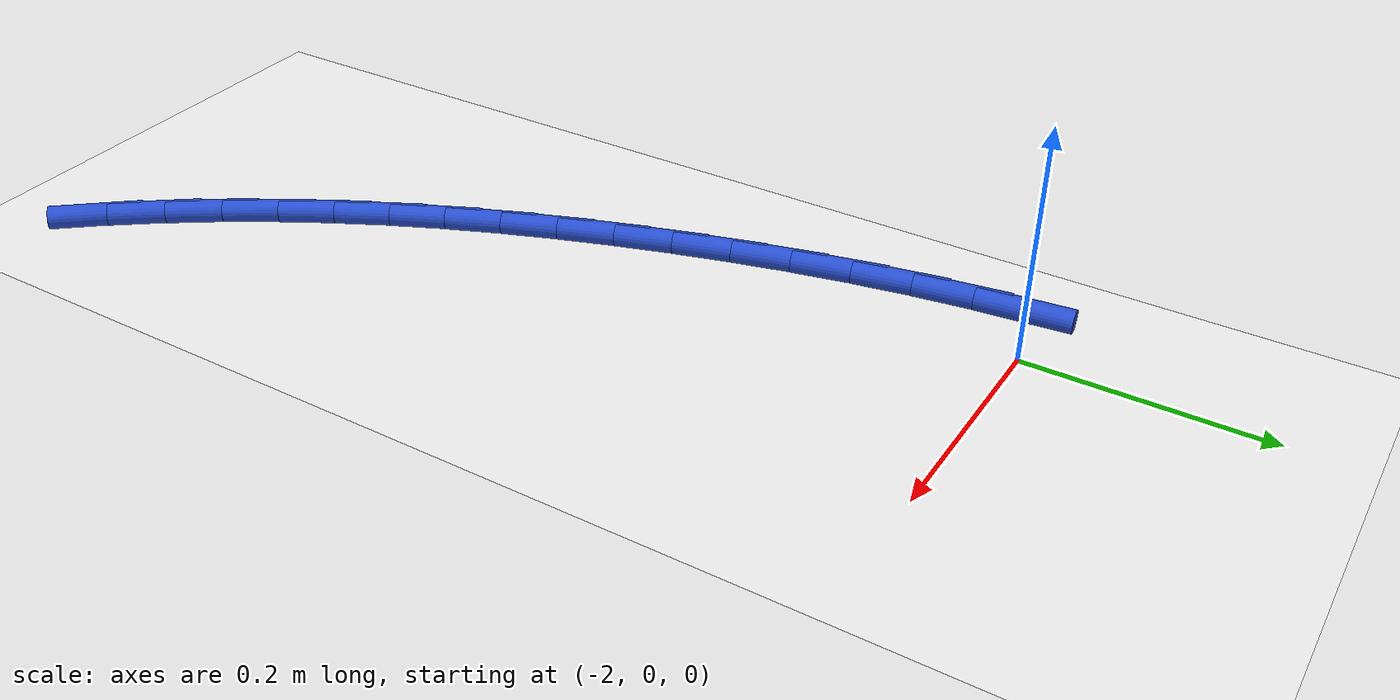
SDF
<sdf version="1.6">
 <world name="default">
  <model name="ground_plane">
   <static>1</static>
   <link name="link">
    <collision name="collision">
     <geometry><plane><normal>0 0 1</normal><size>100 100</size></plane></geometry>
     <surface><friction><ode><mu>100</mu><mu2>50</mu2></ode></friction></surface>
    </collision>
    <visual name="visual">
     <cast_shadows>0</cast_shadows>
     <geometry><plane><normal>0 0 1</normal><size>100 100</size></plane></geometry>
     <material>
      <script><uri>file://media/materials/scripts/gazebo.material</uri><name>Gazebo/WhiteGlow</name></script>
     </material>
    </visual>
   </link>
  </model>
  <model name="line">
   <link name="link_65">
    <pose>-2.0551606696657134 -0.016777494721904634 0.01 0 1.57 -1.457735721249792</pose>
    <collision name="collision">
     <geometry><cylinder><radius>0.01</radius><length>0.08</length></cylinder></geometry>
    </collision>
    <visual name="visual">
     <material>
      <script><name>Gazebo/Blue</name><uri>file://media/materials/scripts/gazebo.material</uri></script>
     </material>
     <geometry><cylinder><radius>0.01</radius><length>0.08</length></cylinder></geometry>
    </visual>
   </link>
   <link name="link_66">
    <pose>-2.0494040097768056 -0.06747694374677116 0.01 0 1.57 -1.416148608408671</pose>
    <collision name="collision">
     <geometry><cylinder><radius>0.01</radius><length>0.08</length></cylinder></geometry>
    </collision>
    <visual name="visual">
     <material>
      <script><name>Gazebo/Blue</name><uri>file://media/materials/scripts/gazebo.material</uri></script>
     </material>
     <geometry><cylinder><radius>0.01</radius><length>0.08</length></cylinder></geometry>
    </visual>
   </link>
   <link name="link_67">
    <pose>-2.041511307153092 -0.11810608816605211 0.01 0 1.57 -1.3776718553835887</pose>
    <collision name="collision">
     <geometry><cylinder><radius>0.01</radius><length>0.08</length></cylinder></geometry>
    </collision>
    <visual name="visual">
     <material>
      <script><name>Gazebo/Blue</name><uri>file://media/materials/scripts/gazebo.material</uri></script>
     </material>
     <geometry><cylinder><radius>0.01</radius><length>0.08</length></cylinder></geometry>
    </visual>
   </link>
   <link name="link_68">
    <pose>-2.031654088785168 -0.16851070064659435 0.01 0 1.57 -1.3419908279740378</pose>
    <collision name="collision">
     <geometry><cylinder><radius>0.01</radius><length>0.08</length></cylinder></geometry>
    </collision>
    <visual name="visual">
     <material>
      <script><name>Gazebo/Blue</name><uri>file://media/materials/scripts/gazebo.material</uri></script>
     </material>
     <geometry><cylinder><radius>0.01</radius><length>0.08</length></cylinder></geometry>
    </visual>
   </link>
   <link name="link_69">
    <pose>-2.020003881663624 -0.2185365538552469 0.01 0 1.57 -1.308806638575488</pose>
    <collision name="collision">
     <geometry><cylinder><radius>0.01</radius><length>0.08</length></cylinder></geometry>
    </collision>
    <visual name="visual">
     <material>
      <script><name>Gazebo/Blue</name><uri>file://media/materials/scripts/gazebo.material</uri></script>
     </material>
     <geometry><cylinder><radius>0.01</radius><length>0.08</length></cylinder></geometry>
    </visual>
   </link>
   <link name="link_70">
    <pose>-2.0067322127790517 -0.2680294204588588 0.01 0 1.57 -1.2778381307066418</pose>
    <collision name="collision">
     <geometry><cylinder><radius>0.01</radius><length>0.08</length></cylinder></geometry>
    </collision>
    <visual name="visual">
     <material>
      <script><name>Gazebo/Blue</name><uri>file://media/materials/scripts/gazebo.material</uri></script>
     </material>
     <geometry><cylinder><radius>0.01</radius><length>0.08</length></cylinder></geometry>
    </visual>
   </link>
   <link name="link_71">
    <pose>-1.992010609122044 -0.3168350731242769 0.01 0 1.57 -1.2487879937569695</pose>
    <collision name="collision">
     <geometry><cylinder><radius>0.01</radius><length>0.08</length></cylinder></geometry>
    </collision>
    <visual name="visual">
     <material>
      <script><name>Gazebo/Blue</name><uri>file://media/materials/scripts/gazebo.material</uri></script>
     </material>
     <geometry><cylinder><radius>0.01</radius><length>0.08</length></cylinder></geometry>
    </visual>
   </link>
   <link name="link_72">
    <pose>-1.9760083666661656 -0.3648005820035588 0.01 0 1.57 -1.2197520336599397</pose>
    <collision name="collision">
     <geometry><cylinder><radius>0.01</radius><length>0.08</length></cylinder></geometry>
    </collision>
    <visual name="visual">
     <material>
      <script><name>Gazebo/Blue</name><uri>file://media/materials/scripts/gazebo.material</uri></script>
     </material>
     <geometry><cylinder><radius>0.01</radius><length>0.08</length></cylinder></geometry>
    </visual>
   </link>
   <link name="link_73">
    <pose>-1.9587825834409107 -0.4118382678367854 0.01 0 1.57 -1.1882720904047646</pose>
    <collision name="collision">
     <geometry><cylinder><radius>0.01</radius><length>0.08</length></cylinder></geometry>
    </collision>
    <visual name="visual">
     <material>
      <script><name>Gazebo/Blue</name><uri>file://media/materials/scripts/gazebo.material</uri></script>
     </material>
     <geometry><cylinder><radius>0.01</radius><length>0.08</length></cylinder></geometry>
    </visual>
   </link>
   <link name="link_74">
    <pose>-1.9402278800194879 -0.4579549428420281 0.01 0 1.57 -1.1542643102217944</pose>
    <collision name="collision">
     <geometry><cylinder><radius>0.01</radius><length>0.08</length></cylinder></geometry>
    </collision>
    <visual name="visual">
     <material>
      <script><name>Gazebo/Blue</name><uri>file://media/materials/scripts/gazebo.material</uri></script>
     </material>
     <geometry><cylinder><radius>0.01</radius><length>0.08</length></cylinder></geometry>
    </visual>
   </link>
   <link name="link_75">
    <pose>-1.920226155856027 -0.5031648174165962 0.01 0 1.57 -1.117888581125724</pose>
    <collision name="collision">
     <geometry><cylinder><radius>0.01</radius><length>0.08</length></cylinder></geometry>
    </collision>
    <visual name="visual">
     <material>
      <script><name>Gazebo/Blue</name><uri>file://media/materials/scripts/gazebo.material</uri></script>
     </material>
     <geometry><cylinder><radius>0.01</radius><length>0.08</length></cylinder></geometry>
    </visual>
   </link>
   <link name="link_76">
    <pose>-1.8986593104046592 -0.5474821019577975 0.01 0 1.57 -1.079358827847979</pose>
    <collision name="collision">
     <geometry><cylinder><radius>0.01</radius><length>0.08</length></cylinder></geometry>
    </collision>
    <visual name="visual">
     <material>
      <script><name>Gazebo/Blue</name><uri>file://media/materials/scripts/gazebo.material</uri></script>
     </material>
     <geometry><cylinder><radius>0.01</radius><length>0.08</length></cylinder></geometry>
    </visual>
   </link>
   <link name="link_77">
    <pose>-1.875409243119514 -0.5909210068629409 0.01 0 1.57 -1.0389426591479167</pose>
    <collision name="collision">
     <geometry><cylinder><radius>0.01</radius><length>0.08</length></cylinder></geometry>
    </collision>
    <visual name="visual">
     <material>
      <script><name>Gazebo/Blue</name><uri>file://media/materials/scripts/gazebo.material</uri></script>
     </material>
     <geometry><cylinder><radius>0.01</radius><length>0.08</length></cylinder></geometry>
    </visual>
   </link>
   <link name="link_78">
    <pose>-1.8503578534547214 -0.6334957425293358 0.01 0 1.57 -0.9969574319462294</pose>
    <collision name="collision">
     <geometry><cylinder><radius>0.01</radius><length>0.08</length></cylinder></geometry>
    </collision>
    <visual name="visual">
     <material>
      <script><name>Gazebo/Blue</name><uri>file://media/materials/scripts/gazebo.material</uri></script>
     </material>
     <geometry><cylinder><radius>0.01</radius><length>0.08</length></cylinder></geometry>
    </visual>
   </link>
   <link name="link_79">
    <pose>-1.8233870408644126 -0.67522051935429 0.01 0 1.57 -0.953762899518578</pose>
    <collision name="collision">
     <geometry><cylinder><radius>0.01</radius><length>0.08</length></cylinder></geometry>
    </collision>
    <visual name="visual">
     <material>
      <script><name>Gazebo/Blue</name><uri>file://media/materials/scripts/gazebo.material</uri></script>
     </material>
     <geometry><cylinder><radius>0.01</radius><length>0.08</length></cylinder></geometry>
    </visual>
   </link>
   <link name="link_80">
    <pose>-1.7943812191251232 -0.7161060415064102 0.01 0 1.57 -0.909619666986182</pose>
    <collision name="collision">
     <geometry><cylinder><radius>0.01</radius><length>0.08</length></cylinder></geometry>
    </collision>
    <visual name="visual">
     <material>
      <script><name>Gazebo/Blue</name><uri>file://media/materials/scripts/gazebo.material</uri></script>
     </material>
     <geometry><cylinder><radius>0.01</radius><length>0.08</length></cylinder></geometry>
    </visual>
   </link>
   <link name="link_81">
    <pose>-1.763314167312509 -0.756038393027661 0.01 0 1.57 -0.8642110693092402</pose>
    <collision name="collision">
     <geometry><cylinder><radius>0.01</radius><length>0.08</length></cylinder></geometry>
    </collision>
    <visual name="visual">
     <material>
      <script><name>Gazebo/Blue</name><uri>file://media/materials/scripts/gazebo.material</uri></script>
     </material>
     <geometry><cylinder><radius>0.01</radius><length>0.08</length></cylinder></geometry>
    </visual>
   </link>
  </model>
 </world>
</sdf>
